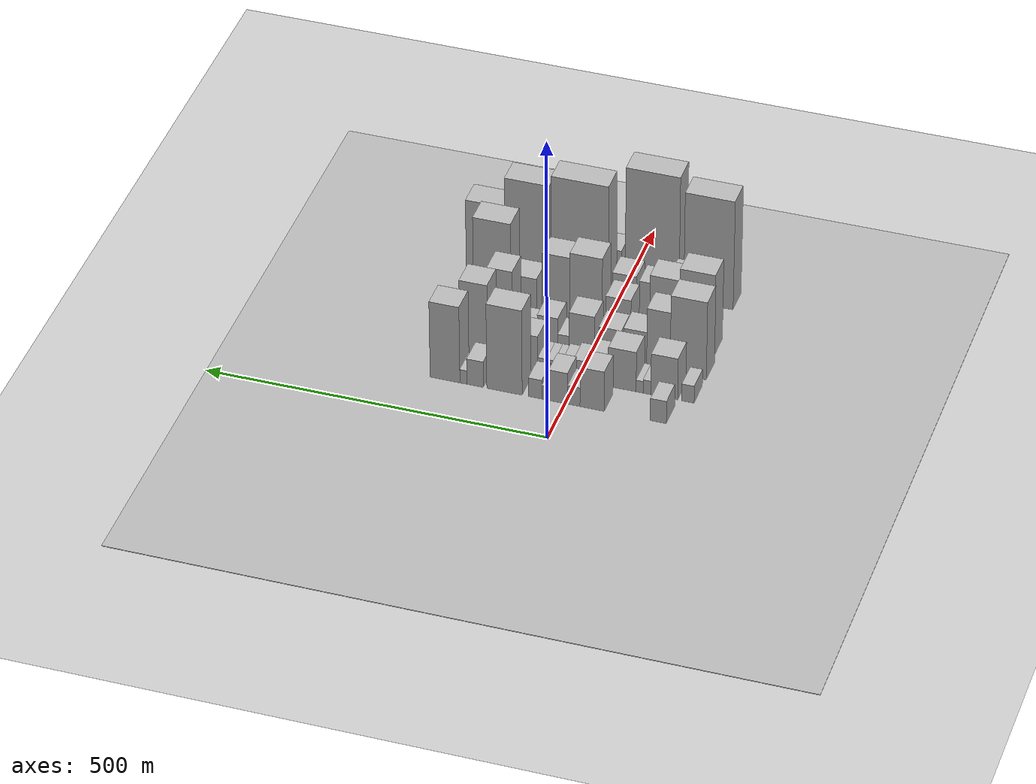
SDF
<sdf version="1.6">
 <world name="default">
  <include><name>ground_plane_1</name><uri>model://HANNAS_ground_plane</uri></include>
  <include>
   <name>ground_plane_2</name>
   <uri>model://HANNAS_ground_plane</uri>
   <pose>100 0 0  0 0 0</pose>
  </include>
  <model name="building_23">
   <static>1</static>
   <pose>100.0000 -133.8058 0 0.000000 0.000000 0.000000</pose>
   <link name="link">
    <pose>0 0 19.50 0 0 0</pose>
    <collision name="collision"><geometry><box><size>40.0000 22.9913 39.0000</size></box></geometry></collision>
    <visual name="visual">
     <cast_shadows>0</cast_shadows>
     <geometry><box><size>40.0000 22.9913 39.0000</size></box></geometry>
     <material>
      <script>
       <uri>model://HANNAS_wall/materials/scripts</uri>
       <uri>model://HANNAS_wall/materials/textures</uri>
       <name>vrc/HANNAS_wall</name>
      </script>
     </material>
    </visual>
   </link>
  </model>
  <model name="building_24">
   <static>1</static>
   <pose>100.0000 -38.3105 0 0.000000 0.000000 0.000000</pose>
   <link name="link">
    <pose>0 0 34.50 0 0 0</pose>
    <collision name="collision"><geometry><box><size>40.0000 35.3331 69.0000</size></box></geometry></collision>
    <visual name="visual">
     <cast_shadows>0</cast_shadows>
     <geometry><box><size>40.0000 35.3331 69.0000</size></box></geometry>
     <material>
      <script>
       <uri>model://HANNAS_wall/materials/scripts</uri>
       <uri>model://HANNAS_wall/materials/textures</uri>
       <name>vrc/HANNAS_wall</name>
      </script>
     </material>
    </visual>
   </link>
  </model>
  <model name="building_25">
   <static>1</static>
   <pose>100.0000 -11.7626 0 0.000000 0.000000 0.000000</pose>
   <link name="link">
    <pose>0 0 16.50 0 0 0</pose>
    <collision name="collision"><geometry><box><size>40.0000 17.7626 33.0000</size></box></geometry></collision>
    <visual name="visual">
     <cast_shadows>0</cast_shadows>
     <geometry><box><size>40.0000 17.7626 33.0000</size></box></geometry>
     <material>
      <script>
       <uri>model://HANNAS_wall/materials/scripts</uri>
       <uri>model://HANNAS_wall/materials/textures</uri>
       <name>vrc/HANNAS_wall</name>
      </script>
     </material>
    </visual>
   </link>
  </model>
  <model name="building_26">
   <static>1</static>
   <pose>100.0000 10.8010 0 0.000000 0.000000 0.000000</pose>
   <link name="link">
    <pose>0 0 27.00 0 0 0</pose>
    <collision name="collision"><geometry><box><size>40.0000 27.3646 54.0000</size></box></geometry></collision>
    <visual name="visual">
     <cast_shadows>0</cast_shadows>
     <geometry><box><size>40.0000 27.3646 54.0000</size></box></geometry>
     <material>
      <script>
       <uri>model://HANNAS_wall/materials/scripts</uri>
       <uri>model://HANNAS_wall/materials/textures</uri>
       <name>vrc/HANNAS_wall</name>
      </script>
     </material>
    </visual>
   </link>
  </model>
  <model name="building_27">
   <static>1</static>
   <pose>100.0000 29.5351 0 0.000000 0.000000 0.000000</pose>
   <link name="link">
    <pose>0 0 12.00 0 0 0</pose>
    <collision name="collision"><geometry><box><size>40.0000 10.1037 24.0000</size></box></geometry></collision>
    <visual name="visual">
     <cast_shadows>0</cast_shadows>
     <geometry><box><size>40.0000 10.1037 24.0000</size></box></geometry>
     <material>
      <script>
       <uri>model://HANNAS_wall/materials/scripts</uri>
       <uri>model://HANNAS_wall/materials/textures</uri>
       <name>vrc/HANNAS_wall</name>
      </script>
     </material>
    </visual>
   </link>
  </model>
  <model name="building_28">
   <static>1</static>
   <pose>100.0000 44.4117 0 0.000000 0.000000 0.000000</pose>
   <link name="link">
    <pose>0 0 16.50 0 0 0</pose>
    <collision name="collision"><geometry><box><size>40.0000 19.6494 33.0000</size></box></geometry></collision>
    <visual name="visual">
     <cast_shadows>0</cast_shadows>
     <geometry><box><size>40.0000 19.6494 33.0000</size></box></geometry>
     <material>
      <script>
       <uri>model://HANNAS_wall/materials/scripts</uri>
       <uri>model://HANNAS_wall/materials/textures</uri>
       <name>vrc/HANNAS_wall</name>
      </script>
     </material>
    </visual>
   </link>
  </model>
  <model name="building_29">
   <static>1</static>
   <pose>100.0000 89.0298 0 0.000000 0.000000 0.000000</pose>
   <link name="link">
    <pose>0 0 73.50 0 0 0</pose>
    <collision name="collision"><geometry><box><size>40.0000 51.5868 147.0000</size></box></geometry></collision>
    <visual name="visual">
     <cast_shadows>0</cast_shadows>
     <geometry><box><size>40.0000 51.5868 147.0000</size></box></geometry>
     <material>
      <script>
       <uri>model://HANNAS_wall/materials/scripts</uri>
       <uri>model://HANNAS_wall/materials/textures</uri>
       <name>vrc/HANNAS_wall</name>
      </script>
     </material>
    </visual>
   </link>
  </model>
  <model name="building_30">
   <static>1</static>
   <pose>100.0000 131.9228 0 0.000000 0.000000 0.000000</pose>
   <link name="link">
    <pose>0 0 22.50 0 0 0</pose>
    <collision name="collision"><geometry><box><size>40.0000 24.1992 45.0000</size></box></geometry></collision>
    <visual name="visual">
     <cast_shadows>0</cast_shadows>
     <geometry><box><size>40.0000 24.1992 45.0000</size></box></geometry>
     <material>
      <script>
       <uri>model://HANNAS_wall/materials/scripts</uri>
       <uri>model://HANNAS_wall/materials/textures</uri>
       <name>vrc/HANNAS_wall</name>
      </script>
     </material>
    </visual>
   </link>
  </model>
  <model name="building_31">
   <static>1</static>
   <pose>100.0000 149.0816 0 0.000000 0.000000 0.000000</pose>
   <link name="link">
    <pose>0 0 12.00 0 0 0</pose>
    <collision name="collision"><geometry><box><size>40.0000 10.1185 24.0000</size></box></geometry></collision>
    <visual name="visual">
     <cast_shadows>0</cast_shadows>
     <geometry><box><size>40.0000 10.1185 24.0000</size></box></geometry>
     <material>
      <script>
       <uri>model://HANNAS_wall/materials/scripts</uri>
       <uri>model://HANNAS_wall/materials/textures</uri>
       <name>vrc/HANNAS_wall</name>
      </script>
     </material>
    </visual>
   </link>
  </model>
  <model name="building_32">
   <static>1</static>
   <pose>100.0000 175.8906 0 0.000000 0.000000 0.000000</pose>
   <link name="link">
    <pose>0 0 66.00 0 0 0</pose>
    <collision name="collision"><geometry><box><size>40.0000 43.4994 132.0000</size></box></geometry></collision>
    <visual name="visual">
     <cast_shadows>0</cast_shadows>
     <geometry><box><size>40.0000 43.4994 132.0000</size></box></geometry>
     <material>
      <script>
       <uri>model://HANNAS_wall/materials/scripts</uri>
       <uri>model://HANNAS_wall/materials/textures</uri>
       <name>vrc/HANNAS_wall</name>
      </script>
     </material>
    </visual>
   </link>
  </model>
  <model name="building_73">
   <static>1</static>
   <pose>155.0000 -159.9413 0 0.000000 0.000000 0.000000</pose>
   <link name="link">
    <pose>0 0 15.00 0 0 0</pose>
    <collision name="collision"><geometry><box><size>40.0000 17.6762 30.0000</size></box></geometry></collision>
    <visual name="visual">
     <cast_shadows>0</cast_shadows>
     <geometry><box><size>40.0000 17.6762 30.0000</size></box></geometry>
     <material>
      <script>
       <uri>model://HANNAS_wall/materials/scripts</uri>
       <uri>model://HANNAS_wall/materials/textures</uri>
       <name>vrc/HANNAS_wall</name>
      </script>
     </material>
    </visual>
   </link>
  </model>
  <model name="building_74">
   <static>1</static>
   <pose>155.0000 -125.7221 0 0.000000 0.000000 0.000000</pose>
   <link name="link">
    <pose>0 0 36.00 0 0 0</pose>
    <collision name="collision"><geometry><box><size>40.0000 38.7620 72.0000</size></box></geometry></collision>
    <visual name="visual">
     <cast_shadows>0</cast_shadows>
     <geometry><box><size>40.0000 38.7620 72.0000</size></box></geometry>
     <material>
      <script>
       <uri>model://HANNAS_wall/materials/scripts</uri>
       <uri>model://HANNAS_wall/materials/textures</uri>
       <name>vrc/HANNAS_wall</name>
      </script>
     </material>
    </visual>
   </link>
  </model>
  <model name="building_75">
   <static>1</static>
   <pose>155.0000 -100.6961 0 0.000000 0.000000 0.000000</pose>
   <link name="link">
    <pose>0 0 12.00 0 0 0</pose>
    <collision name="collision"><geometry><box><size>40.0000 11.2900 24.0000</size></box></geometry></collision>
    <visual name="visual">
     <cast_shadows>0</cast_shadows>
     <geometry><box><size>40.0000 11.2900 24.0000</size></box></geometry>
     <material>
      <script>
       <uri>model://HANNAS_wall/materials/scripts</uri>
       <uri>model://HANNAS_wall/materials/textures</uri>
       <name>vrc/HANNAS_wall</name>
      </script>
     </material>
    </visual>
   </link>
  </model>
  <model name="building_76">
   <static>1</static>
   <pose>155.0000 -89.9721 0 0.000000 0.000000 0.000000</pose>
   <link name="link">
    <pose>0 0 10.50 0 0 0</pose>
    <collision name="collision"><geometry><box><size>40.0000 10.1580 21.0000</size></box></geometry></collision>
    <visual name="visual">
     <cast_shadows>0</cast_shadows>
     <geometry><box><size>40.0000 10.1580 21.0000</size></box></geometry>
     <material>
      <script>
       <uri>model://HANNAS_wall/materials/scripts</uri>
       <uri>model://HANNAS_wall/materials/textures</uri>
       <name>vrc/HANNAS_wall</name>
      </script>
     </material>
    </visual>
   </link>
  </model>
  <model name="building_77">
   <static>1</static>
   <pose>155.0000 -64.7002 0 0.000000 0.000000 0.000000</pose>
   <link name="link">
    <pose>0 0 34.50 0 0 0</pose>
    <collision name="collision"><geometry><box><size>40.0000 40.3858 69.0000</size></box></geometry></collision>
    <visual name="visual">
     <cast_shadows>0</cast_shadows>
     <geometry><box><size>40.0000 40.3858 69.0000</size></box></geometry>
     <material>
      <script>
       <uri>model://HANNAS_wall/materials/scripts</uri>
       <uri>model://HANNAS_wall/materials/textures</uri>
       <name>vrc/HANNAS_wall</name>
      </script>
     </material>
    </visual>
   </link>
  </model>
  <model name="building_78">
   <static>1</static>
   <pose>155.0000 -31.3387 0 0.000000 0.000000 0.000000</pose>
   <link name="link">
    <pose>0 0 24.00 0 0 0</pose>
    <collision name="collision"><geometry><box><size>40.0000 26.3372 48.0000</size></box></geometry></collision>
    <visual name="visual">
     <cast_shadows>0</cast_shadows>
     <geometry><box><size>40.0000 26.3372 48.0000</size></box></geometry>
     <material>
      <script>
       <uri>model://HANNAS_wall/materials/scripts</uri>
       <uri>model://HANNAS_wall/materials/textures</uri>
       <name>vrc/HANNAS_wall</name>
      </script>
     </material>
    </visual>
   </link>
  </model>
  <model name="building_79">
   <static>1</static>
   <pose>155.0000 -4.5127 0 0.000000 0.000000 0.000000</pose>
   <link name="link">
    <pose>0 0 18.00 0 0 0</pose>
    <collision name="collision"><geometry><box><size>40.0000 21.3148 36.0000</size></box></geometry></collision>
    <visual name="visual">
     <cast_shadows>0</cast_shadows>
     <geometry><box><size>40.0000 21.3148 36.0000</size></box></geometry>
     <material>
      <script>
       <uri>model://HANNAS_wall/materials/scripts</uri>
       <uri>model://HANNAS_wall/materials/textures</uri>
       <name>vrc/HANNAS_wall</name>
      </script>
     </material>
    </visual>
   </link>
  </model>
  <model name="building_80">
   <static>1</static>
   <pose>155.0000 14.5444 0 0.000000 0.000000 0.000000</pose>
   <link name="link">
    <pose>0 0 15.00 0 0 0</pose>
    <collision name="collision"><geometry><box><size>40.0000 16.7994 30.0000</size></box></geometry></collision>
    <visual name="visual">
     <cast_shadows>0</cast_shadows>
     <geometry><box><size>40.0000 16.7994 30.0000</size></box></geometry>
     <material>
      <script>
       <uri>model://HANNAS_wall/materials/scripts</uri>
       <uri>model://HANNAS_wall/materials/textures</uri>
       <name>vrc/HANNAS_wall</name>
      </script>
     </material>
    </visual>
   </link>
  </model>
  <model name="building_81">
   <static>1</static>
   <pose>155.0000 28.5646 0 0.000000 0.000000 0.000000</pose>
   <link name="link">
    <pose>0 0 13.50 0 0 0</pose>
    <collision name="collision"><geometry><box><size>40.0000 11.2410 27.0000</size></box></geometry></collision>
    <visual name="visual">
     <cast_shadows>0</cast_shadows>
     <geometry><box><size>40.0000 11.2410 27.0000</size></box></geometry>
     <material>
      <script>
       <uri>model://HANNAS_wall/materials/scripts</uri>
       <uri>model://HANNAS_wall/materials/textures</uri>
       <name>vrc/HANNAS_wall</name>
      </script>
     </material>
    </visual>
   </link>
  </model>
  <model name="building_82">
   <static>1</static>
   <pose>155.0000 39.7942 0 0.000000 0.000000 0.000000</pose>
   <link name="link">
    <pose>0 0 13.50 0 0 0</pose>
    <collision name="collision"><geometry><box><size>40.0000 11.2180 27.0000</size></box></geometry></collision>
    <visual name="visual">
     <cast_shadows>0</cast_shadows>
     <geometry><box><size>40.0000 11.2180 27.0000</size></box></geometry>
     <material>
      <script>
       <uri>model://HANNAS_wall/materials/scripts</uri>
       <uri>model://HANNAS_wall/materials/textures</uri>
       <name>vrc/HANNAS_wall</name>
      </script>
     </material>
    </visual>
   </link>
  </model>
  <model name="building_83">
   <static>1</static>
   <pose>155.0000 51.8045 0 0.000000 0.000000 0.000000</pose>
   <link name="link">
    <pose>0 0 13.50 0 0 0</pose>
    <collision name="collision"><geometry><box><size>40.0000 12.8027 27.0000</size></box></geometry></collision>
    <visual name="visual">
     <cast_shadows>0</cast_shadows>
     <geometry><box><size>40.0000 12.8027 27.0000</size></box></geometry>
     <material>
      <script>
       <uri>model://HANNAS_wall/materials/scripts</uri>
       <uri>model://HANNAS_wall/materials/textures</uri>
       <name>vrc/HANNAS_wall</name>
      </script>
     </material>
    </visual>
   </link>
  </model>
  <model name="building_84">
   <static>1</static>
   <pose>155.0000 75.0886 0 0.000000 0.000000 0.000000</pose>
   <link name="link">
    <pose>0 0 31.50 0 0 0</pose>
    <collision name="collision"><geometry><box><size>40.0000 33.7656 63.0000</size></box></geometry></collision>
    <visual name="visual">
     <cast_shadows>0</cast_shadows>
     <geometry><box><size>40.0000 33.7656 63.0000</size></box></geometry>
     <material>
      <script>
       <uri>model://HANNAS_wall/materials/scripts</uri>
       <uri>model://HANNAS_wall/materials/textures</uri>
       <name>vrc/HANNAS_wall</name>
      </script>
     </material>
    </visual>
   </link>
  </model>
  <model name="building_85">
   <static>1</static>
   <pose>155.0000 98.3248 0 0.000000 0.000000 0.000000</pose>
   <link name="link">
    <pose>0 0 13.50 0 0 0</pose>
    <collision name="collision"><geometry><box><size>40.0000 12.7068 27.0000</size></box></geometry></collision>
    <visual name="visual">
     <cast_shadows>0</cast_shadows>
     <geometry><box><size>40.0000 12.7068 27.0000</size></box></geometry>
     <material>
      <script>
       <uri>model://HANNAS_wall/materials/scripts</uri>
       <uri>model://HANNAS_wall/materials/textures</uri>
       <name>vrc/HANNAS_wall</name>
      </script>
     </material>
    </visual>
   </link>
  </model>
  <model name="building_86">
   <static>1</static>
   <pose>155.0000 122.1822 0 0.000000 0.000000 0.000000</pose>
   <link name="link">
    <pose>0 0 18.00 0 0 0</pose>
    <collision name="collision"><geometry><box><size>40.0000 19.0079 36.0000</size></box></geometry></collision>
    <visual name="visual">
     <cast_shadows>0</cast_shadows>
     <geometry><box><size>40.0000 19.0079 36.0000</size></box></geometry>
     <material>
      <script>
       <uri>model://HANNAS_wall/materials/scripts</uri>
       <uri>model://HANNAS_wall/materials/textures</uri>
       <name>vrc/HANNAS_wall</name>
      </script>
     </material>
    </visual>
   </link>
  </model>
  <model name="building_87">
   <static>1</static>
   <pose>155.0000 152.0349 0 0.000000 0.000000 0.000000</pose>
   <link name="link">
    <pose>0 0 67.50 0 0 0</pose>
    <collision name="collision"><geometry><box><size>40.0000 40.6977 135.0000</size></box></geometry></collision>
    <visual name="visual">
     <cast_shadows>0</cast_shadows>
     <geometry><box><size>40.0000 40.6977 135.0000</size></box></geometry>
     <material>
      <script>
       <uri>model://HANNAS_wall/materials/scripts</uri>
       <uri>model://HANNAS_wall/materials/textures</uri>
       <name>vrc/HANNAS_wall</name>
      </script>
     </material>
    </visual>
   </link>
  </model>
  <model name="building_124">
   <static>1</static>
   <pose>210.0000 -143.7323 0 0.000000 0.000000 0.000000</pose>
   <link name="link">
    <pose>0 0 67.50 0 0 0</pose>
    <collision name="collision"><geometry><box><size>40.0000 52.4762 135.0000</size></box></geometry></collision>
    <visual name="visual">
     <cast_shadows>0</cast_shadows>
     <geometry><box><size>40.0000 52.4762 135.0000</size></box></geometry>
     <material>
      <script>
       <uri>model://HANNAS_wall/materials/scripts</uri>
       <uri>model://HANNAS_wall/materials/textures</uri>
       <name>vrc/HANNAS_wall</name>
      </script>
     </material>
    </visual>
   </link>
  </model>
  <model name="building_125">
   <static>1</static>
   <pose>210.0000 -100.3800 0 0.000000 0.000000 0.000000</pose>
   <link name="link">
    <pose>0 0 52.50 0 0 0</pose>
    <collision name="collision"><geometry><box><size>40.0000 34.2284 105.0000</size></box></geometry></collision>
    <visual name="visual">
     <cast_shadows>0</cast_shadows>
     <geometry><box><size>40.0000 34.2284 105.0000</size></box></geometry>
     <material>
      <script>
       <uri>model://HANNAS_wall/materials/scripts</uri>
       <uri>model://HANNAS_wall/materials/textures</uri>
       <name>vrc/HANNAS_wall</name>
      </script>
     </material>
    </visual>
   </link>
  </model>
  <model name="building_126">
   <static>1</static>
   <pose>210.0000 -66.3722 0 0.000000 0.000000 0.000000</pose>
   <link name="link">
    <pose>0 0 31.50 0 0 0</pose>
    <collision name="collision"><geometry><box><size>40.0000 33.7871 63.0000</size></box></geometry></collision>
    <visual name="visual">
     <cast_shadows>0</cast_shadows>
     <geometry><box><size>40.0000 33.7871 63.0000</size></box></geometry>
     <material>
      <script>
       <uri>model://HANNAS_wall/materials/scripts</uri>
       <uri>model://HANNAS_wall/materials/textures</uri>
       <name>vrc/HANNAS_wall</name>
      </script>
     </material>
    </visual>
   </link>
  </model>
  <model name="building_127">
   <static>1</static>
   <pose>210.0000 -29.9133 0 0.000000 0.000000 0.000000</pose>
   <link name="link">
    <pose>0 0 28.50 0 0 0</pose>
    <collision name="collision"><geometry><box><size>40.0000 33.1308 57.0000</size></box></geometry></collision>
    <visual name="visual">
     <cast_shadows>0</cast_shadows>
     <geometry><box><size>40.0000 33.1308 57.0000</size></box></geometry>
     <material>
      <script>
       <uri>model://HANNAS_wall/materials/scripts</uri>
       <uri>model://HANNAS_wall/materials/textures</uri>
       <name>vrc/HANNAS_wall</name>
      </script>
     </material>
    </visual>
   </link>
  </model>
  <model name="building_128">
   <static>1</static>
   <pose>210.0000 11.3127 0 0.000000 0.000000 0.000000</pose>
   <link name="link">
    <pose>0 0 36.00 0 0 0</pose>
    <collision name="collision"><geometry><box><size>40.0000 37.3212 72.0000</size></box></geometry></collision>
    <visual name="visual">
     <cast_shadows>0</cast_shadows>
     <geometry><box><size>40.0000 37.3212 72.0000</size></box></geometry>
     <material>
      <script>
       <uri>model://HANNAS_wall/materials/scripts</uri>
       <uri>model://HANNAS_wall/materials/textures</uri>
       <name>vrc/HANNAS_wall</name>
      </script>
     </material>
    </visual>
   </link>
  </model>
  <model name="building_129">
   <static>1</static>
   <pose>210.0000 38.2741 0 0.000000 0.000000 0.000000</pose>
   <link name="link">
    <pose>0 0 15.00 0 0 0</pose>
    <collision name="collision"><geometry><box><size>40.0000 16.6015 30.0000</size></box></geometry></collision>
    <visual name="visual">
     <cast_shadows>0</cast_shadows>
     <geometry><box><size>40.0000 16.6015 30.0000</size></box></geometry>
     <material>
      <script>
       <uri>model://HANNAS_wall/materials/scripts</uri>
       <uri>model://HANNAS_wall/materials/textures</uri>
       <name>vrc/HANNAS_wall</name>
      </script>
     </material>
    </visual>
   </link>
  </model>
  <model name="building_130">
   <static>1</static>
   <pose>210.0000 61.6853 0 0.000000 0.000000 0.000000</pose>
   <link name="link">
    <pose>0 0 28.50 0 0 0</pose>
    <collision name="collision"><geometry><box><size>40.0000 30.2209 57.0000</size></box></geometry></collision>
    <visual name="visual">
     <cast_shadows>0</cast_shadows>
     <geometry><box><size>40.0000 30.2209 57.0000</size></box></geometry>
     <material>
      <script>
       <uri>model://HANNAS_wall/materials/scripts</uri>
       <uri>model://HANNAS_wall/materials/textures</uri>
       <name>vrc/HANNAS_wall</name>
      </script>
     </material>
    </visual>
   </link>
  </model>
  <model name="building_131">
   <static>1</static>
   <pose>210.0000 90.9158 0 0.000000 0.000000 0.000000</pose>
   <link name="link">
    <pose>0 0 18.00 0 0 0</pose>
    <collision name="collision"><geometry><box><size>40.0000 18.2402 36.0000</size></box></geometry></collision>
    <visual name="visual">
     <cast_shadows>0</cast_shadows>
     <geometry><box><size>40.0000 18.2402 36.0000</size></box></geometry>
     <material>
      <script>
       <uri>model://HANNAS_wall/materials/scripts</uri>
       <uri>model://HANNAS_wall/materials/textures</uri>
       <name>vrc/HANNAS_wall</name>
      </script>
     </material>
    </visual>
   </link>
  </model>
  <model name="building_132">
   <static>1</static>
   <pose>210.0000 106.5720 0 0.000000 0.000000 0.000000</pose>
   <link name="link">
    <pose>0 0 13.50 0 0 0</pose>
    <collision name="collision"><geometry><box><size>40.0000 13.0722 27.0000</size></box></geometry></collision>
    <visual name="visual">
     <cast_shadows>0</cast_shadows>
     <geometry><box><size>40.0000 13.0722 27.0000</size></box></geometry>
     <material>
      <script>
       <uri>model://HANNAS_wall/materials/scripts</uri>
       <uri>model://HANNAS_wall/materials/textures</uri>
       <name>vrc/HANNAS_wall</name>
      </script>
     </material>
    </visual>
   </link>
  </model>
  <model name="building_133">
   <static>1</static>
   <pose>210.0000 131.6312 0 0.000000 0.000000 0.000000</pose>
   <link name="link">
    <pose>0 0 61.50 0 0 0</pose>
    <collision name="collision"><geometry><box><size>40.0000 37.0461 123.0000</size></box></geometry></collision>
    <visual name="visual">
     <cast_shadows>0</cast_shadows>
     <geometry><box><size>40.0000 37.0461 123.0000</size></box></geometry>
     <material>
      <script>
       <uri>model://HANNAS_wall/materials/scripts</uri>
       <uri>model://HANNAS_wall/materials/textures</uri>
       <name>vrc/HANNAS_wall</name>
      </script>
     </material>
    </visual>
   </link>
  </model>
  <model name="building_134">
   <static>1</static>
   <pose>210.0000 165.3516 0 0.000000 0.000000 0.000000</pose>
   <link name="link">
    <pose>0 0 30.00 0 0 0</pose>
    <collision name="collision"><geometry><box><size>40.0000 30.3948 60.0000</size></box></geometry></collision>
    <visual name="visual">
     <cast_shadows>0</cast_shadows>
     <geometry><box><size>40.0000 30.3948 60.0000</size></box></geometry>
     <material>
      <script>
       <uri>model://HANNAS_wall/materials/scripts</uri>
       <uri>model://HANNAS_wall/materials/textures</uri>
       <name>vrc/HANNAS_wall</name>
      </script>
     </material>
    </visual>
   </link>
  </model>
  <model name="building_177">
   <static>1</static>
   <pose>265.0000 -139.5790 0 0.000000 0.000000 0.000000</pose>
   <link name="link">
    <pose>0 0 70.50 0 0 0</pose>
    <collision name="collision"><geometry><box><size>40.0000 51.1971 141.0000</size></box></geometry></collision>
    <visual name="visual">
     <cast_shadows>0</cast_shadows>
     <geometry><box><size>40.0000 51.1971 141.0000</size></box></geometry>
     <material>
      <script>
       <uri>model://HANNAS_wall/materials/scripts</uri>
       <uri>model://HANNAS_wall/materials/textures</uri>
       <name>vrc/HANNAS_wall</name>
      </script>
     </material>
    </visual>
   </link>
  </model>
  <model name="building_178">
   <static>1</static>
   <pose>265.0000 -92.2448 0 0.000000 0.000000 0.000000</pose>
   <link name="link">
    <pose>0 0 60.00 0 0 0</pose>
    <collision name="collision"><geometry><box><size>40.0000 43.4713 120.0000</size></box></geometry></collision>
    <visual name="visual">
     <cast_shadows>0</cast_shadows>
     <geometry><box><size>40.0000 43.4713 120.0000</size></box></geometry>
     <material>
      <script>
       <uri>model://HANNAS_wall/materials/scripts</uri>
       <uri>model://HANNAS_wall/materials/textures</uri>
       <name>vrc/HANNAS_wall</name>
      </script>
     </material>
    </visual>
   </link>
  </model>
  <model name="building_179">
   <static>1</static>
   <pose>265.0000 -64.8264 0 0.000000 0.000000 0.000000</pose>
   <link name="link">
    <pose>0 0 13.50 0 0 0</pose>
    <collision name="collision"><geometry><box><size>40.0000 11.3654 27.0000</size></box></geometry></collision>
    <visual name="visual">
     <cast_shadows>0</cast_shadows>
     <geometry><box><size>40.0000 11.3654 27.0000</size></box></geometry>
     <material>
      <script>
       <uri>model://HANNAS_wall/materials/scripts</uri>
       <uri>model://HANNAS_wall/materials/textures</uri>
       <name>vrc/HANNAS_wall</name>
      </script>
     </material>
    </visual>
   </link>
  </model>
  <model name="building_180">
   <static>1</static>
   <pose>265.0000 -55.6859 0 0.000000 0.000000 0.000000</pose>
   <link name="link">
    <pose>0 0 7.50 0 0 0</pose>
    <collision name="collision"><geometry><box><size>40.0000 6.9157 15.0000</size></box></geometry></collision>
    <visual name="visual">
     <cast_shadows>0</cast_shadows>
     <geometry><box><size>40.0000 6.9157 15.0000</size></box></geometry>
     <material>
      <script>
       <uri>model://HANNAS_wall/materials/scripts</uri>
       <uri>model://HANNAS_wall/materials/textures</uri>
       <name>vrc/HANNAS_wall</name>
      </script>
     </material>
    </visual>
   </link>
  </model>
  <model name="building_181">
   <static>1</static>
   <pose>265.0000 -24.7318 0 0.000000 0.000000 0.000000</pose>
   <link name="link">
    <pose>0 0 34.50 0 0 0</pose>
    <collision name="collision"><geometry><box><size>40.0000 36.9926 69.0000</size></box></geometry></collision>
    <visual name="visual">
     <cast_shadows>0</cast_shadows>
     <geometry><box><size>40.0000 36.9926 69.0000</size></box></geometry>
     <material>
      <script>
       <uri>model://HANNAS_wall/materials/scripts</uri>
       <uri>model://HANNAS_wall/materials/textures</uri>
       <name>vrc/HANNAS_wall</name>
      </script>
     </material>
    </visual>
   </link>
  </model>
  <model name="building_182">
   <static>1</static>
   <pose>265.0000 22.4403 0 0.000000 0.000000 0.000000</pose>
   <link name="link">
    <pose>0 0 66.00 0 0 0</pose>
    <collision name="collision"><geometry><box><size>40.0000 47.3516 132.0000</size></box></geometry></collision>
    <visual name="visual">
     <cast_shadows>0</cast_shadows>
     <geometry><box><size>40.0000 47.3516 132.0000</size></box></geometry>
     <material>
      <script>
       <uri>model://HANNAS_wall/materials/scripts</uri>
       <uri>model://HANNAS_wall/materials/textures</uri>
       <name>vrc/HANNAS_wall</name>
      </script>
     </material>
    </visual>
   </link>
  </model>
  <model name="building_183">
   <static>1</static>
   <pose>265.0000 66.6333 0 0.000000 0.000000 0.000000</pose>
   <link name="link">
    <pose>0 0 61.50 0 0 0</pose>
    <collision name="collision"><geometry><box><size>40.0000 41.0344 123.0000</size></box></geometry></collision>
    <visual name="visual">
     <cast_shadows>0</cast_shadows>
     <geometry><box><size>40.0000 41.0344 123.0000</size></box></geometry>
     <material>
      <script>
       <uri>model://HANNAS_wall/materials/scripts</uri>
       <uri>model://HANNAS_wall/materials/textures</uri>
       <name>vrc/HANNAS_wall</name>
      </script>
     </material>
    </visual>
   </link>
  </model>
  <model name="building_184">
   <static>1</static>
   <pose>265.0000 114.1565 0 0.000000 0.000000 0.000000</pose>
   <link name="link">
    <pose>0 0 37.50 0 0 0</pose>
    <collision name="collision"><geometry><box><size>40.0000 38.0119 75.0000</size></box></geometry></collision>
    <visual name="visual">
     <cast_shadows>0</cast_shadows>
     <geometry><box><size>40.0000 38.0119 75.0000</size></box></geometry>
     <material>
      <script>
       <uri>model://HANNAS_wall/materials/scripts</uri>
       <uri>model://HANNAS_wall/materials/textures</uri>
       <name>vrc/HANNAS_wall</name>
      </script>
     </material>
    </visual>
   </link>
  </model>
  <model name="building_185">
   <static>1</static>
   <pose>265.0000 161.0077 0 0.000000 0.000000 0.000000</pose>
   <link name="link">
    <pose>0 0 81.00 0 0 0</pose>
    <collision name="collision"><geometry><box><size>40.0000 55.6905 162.0000</size></box></geometry></collision>
    <visual name="visual">
     <cast_shadows>0</cast_shadows>
     <geometry><box><size>40.0000 55.6905 162.0000</size></box></geometry>
     <material>
      <script>
       <uri>model://HANNAS_wall/materials/scripts</uri>
       <uri>model://HANNAS_wall/materials/textures</uri>
       <name>vrc/HANNAS_wall</name>
      </script>
     </material>
    </visual>
   </link>
  </model>
  <model name="building_227">
   <static>1</static>
   <pose>320.0000 -135.0049 0 0.000000 0.000000 0.000000</pose>
   <link name="link">
    <pose>0 0 16.50 0 0 0</pose>
    <collision name="collision"><geometry><box><size>40.0000 18.7515 33.0000</size></box></geometry></collision>
    <visual name="visual">
     <cast_shadows>0</cast_shadows>
     <geometry><box><size>40.0000 18.7515 33.0000</size></box></geometry>
     <material>
      <script>
       <uri>model://HANNAS_wall/materials/scripts</uri>
       <uri>model://HANNAS_wall/materials/textures</uri>
       <name>vrc/HANNAS_wall</name>
      </script>
     </material>
    </visual>
   </link>
  </model>
  <model name="building_228">
   <static>1</static>
   <pose>320.0000 -104.3248 0 0.000000 0.000000 0.000000</pose>
   <link name="link">
    <pose>0 0 42.00 0 0 0</pose>
    <collision name="collision"><geometry><box><size>40.0000 42.6087 84.0000</size></box></geometry></collision>
    <visual name="visual">
     <cast_shadows>0</cast_shadows>
     <geometry><box><size>40.0000 42.6087 84.0000</size></box></geometry>
     <material>
      <script>
       <uri>model://HANNAS_wall/materials/scripts</uri>
       <uri>model://HANNAS_wall/materials/textures</uri>
       <name>vrc/HANNAS_wall</name>
      </script>
     </material>
    </visual>
   </link>
  </model>
  <model name="building_229">
   <static>1</static>
   <pose>320.0000 -56.2215 0 0.000000 0.000000 0.000000</pose>
   <link name="link">
    <pose>0 0 31.50 0 0 0</pose>
    <collision name="collision"><geometry><box><size>40.0000 35.5978 63.0000</size></box></geometry></collision>
    <visual name="visual">
     <cast_shadows>0</cast_shadows>
     <geometry><box><size>40.0000 35.5978 63.0000</size></box></geometry>
     <material>
      <script>
       <uri>model://HANNAS_wall/materials/scripts</uri>
       <uri>model://HANNAS_wall/materials/textures</uri>
       <name>vrc/HANNAS_wall</name>
      </script>
     </material>
    </visual>
   </link>
  </model>
  <model name="building_230">
   <static>1</static>
   <pose>320.0000 -16.6225 0 0.000000 0.000000 0.000000</pose>
   <link name="link">
    <pose>0 0 34.50 0 0 0</pose>
    <collision name="collision"><geometry><box><size>40.0000 35.6003 69.0000</size></box></geometry></collision>
    <visual name="visual">
     <cast_shadows>0</cast_shadows>
     <geometry><box><size>40.0000 35.6003 69.0000</size></box></geometry>
     <material>
      <script>
       <uri>model://HANNAS_wall/materials/scripts</uri>
       <uri>model://HANNAS_wall/materials/textures</uri>
       <name>vrc/HANNAS_wall</name>
      </script>
     </material>
    </visual>
   </link>
  </model>
  <model name="building_231">
   <static>1</static>
   <pose>320.0000 49.1157 0 0.000000 0.000000 0.000000</pose>
   <link name="link">
    <pose>0 0 108.00 0 0 0</pose>
    <collision name="collision"><geometry><box><size>40.0000 83.8762 216.0000</size></box></geometry></collision>
    <visual name="visual">
     <cast_shadows>0</cast_shadows>
     <geometry><box><size>40.0000 83.8762 216.0000</size></box></geometry>
     <material>
      <script>
       <uri>model://HANNAS_wall/materials/scripts</uri>
       <uri>model://HANNAS_wall/materials/textures</uri>
       <name>vrc/HANNAS_wall</name>
      </script>
     </material>
    </visual>
   </link>
  </model>
  <model name="building_232">
   <static>1</static>
   <pose>320.0000 126.9676 0 0.000000 0.000000 0.000000</pose>
   <link name="link">
    <pose>0 0 99.00 0 0 0</pose>
    <collision name="collision"><geometry><box><size>40.0000 65.8274 198.0000</size></box></geometry></collision>
    <visual name="visual">
     <cast_shadows>0</cast_shadows>
     <geometry><box><size>40.0000 65.8274 198.0000</size></box></geometry>
     <material>
      <script>
       <uri>model://HANNAS_wall/materials/scripts</uri>
       <uri>model://HANNAS_wall/materials/textures</uri>
       <name>vrc/HANNAS_wall</name>
      </script>
     </material>
    </visual>
   </link>
  </model>
  <model name="building_233">
   <static>1</static>
   <pose>320.0000 188.8703 0 0.000000 0.000000 0.000000</pose>
   <link name="link">
    <pose>0 0 73.50 0 0 0</pose>
    <collision name="collision"><geometry><box><size>40.0000 57.9780 147.0000</size></box></geometry></collision>
    <visual name="visual">
     <cast_shadows>0</cast_shadows>
     <geometry><box><size>40.0000 57.9780 147.0000</size></box></geometry>
     <material>
      <script>
       <uri>model://HANNAS_wall/materials/scripts</uri>
       <uri>model://HANNAS_wall/materials/textures</uri>
       <name>vrc/HANNAS_wall</name>
      </script>
     </material>
    </visual>
   </link>
  </model>
  <model name="building_269">
   <static>1</static>
   <pose>375.0000 -123.9649 0 0.000000 0.000000 0.000000</pose>
   <link name="link">
    <pose>0 0 94.50 0 0 0</pose>
    <collision name="collision"><geometry><box><size>40.0000 72.7438 189.0000</size></box></geometry></collision>
    <visual name="visual">
     <cast_shadows>0</cast_shadows>
     <geometry><box><size>40.0000 72.7438 189.0000</size></box></geometry>
     <material>
      <script>
       <uri>model://HANNAS_wall/materials/scripts</uri>
       <uri>model://HANNAS_wall/materials/textures</uri>
       <name>vrc/HANNAS_wall</name>
      </script>
     </material>
    </visual>
   </link>
  </model>
  <model name="building_270">
   <static>1</static>
   <pose>375.0000 -40.8064 0 0.000000 0.000000 0.000000</pose>
   <link name="link">
    <pose>0 0 106.50 0 0 0</pose>
    <collision name="collision"><geometry><box><size>40.0000 79.5730 213.0000</size></box></geometry></collision>
    <visual name="visual">
     <cast_shadows>0</cast_shadows>
     <geometry><box><size>40.0000 79.5730 213.0000</size></box></geometry>
     <material>
      <script>
       <uri>model://HANNAS_wall/materials/scripts</uri>
       <uri>model://HANNAS_wall/materials/textures</uri>
       <name>vrc/HANNAS_wall</name>
      </script>
     </material>
    </visual>
   </link>
  </model>
  <model name="building_271">
   <static>1</static>
   <pose>375.0000 21.6259 0 0.000000 0.000000 0.000000</pose>
   <link name="link">
    <pose>0 0 33.00 0 0 0</pose>
    <collision name="collision"><geometry><box><size>40.0000 33.2917 66.0000</size></box></geometry></collision>
    <visual name="visual">
     <cast_shadows>0</cast_shadows>
     <geometry><box><size>40.0000 33.2917 66.0000</size></box></geometry>
     <material>
      <script>
       <uri>model://HANNAS_wall/materials/scripts</uri>
       <uri>model://HANNAS_wall/materials/textures</uri>
       <name>vrc/HANNAS_wall</name>
      </script>
     </material>
    </visual>
   </link>
  </model>
  <model name="building_272">
   <static>1</static>
   <pose>375.0000 68.5802 0 0.000000 0.000000 0.000000</pose>
   <link name="link">
    <pose>0 0 37.50 0 0 0</pose>
    <collision name="collision"><geometry><box><size>40.0000 40.6169 75.0000</size></box></geometry></collision>
    <visual name="visual">
     <cast_shadows>0</cast_shadows>
     <geometry><box><size>40.0000 40.6169 75.0000</size></box></geometry>
     <material>
      <script>
       <uri>model://HANNAS_wall/materials/scripts</uri>
       <uri>model://HANNAS_wall/materials/textures</uri>
       <name>vrc/HANNAS_wall</name>
      </script>
     </material>
    </visual>
   </link>
  </model>
  <model name="building_273">
   <static>1</static>
   <pose>375.0000 114.8491 0 0.000000 0.000000 0.000000</pose>
   <link name="link">
    <pose>0 0 54.00 0 0 0</pose>
    <collision name="collision"><geometry><box><size>40.0000 39.9209 108.0000</size></box></geometry></collision>
    <visual name="visual">
     <cast_shadows>0</cast_shadows>
     <geometry><box><size>40.0000 39.9209 108.0000</size></box></geometry>
     <material>
      <script>
       <uri>model://HANNAS_wall/materials/scripts</uri>
       <uri>model://HANNAS_wall/materials/textures</uri>
       <name>vrc/HANNAS_wall</name>
      </script>
     </material>
    </visual>
   </link>
  </model>
  <model name="building_274">
   <static>1</static>
   <pose>375.0000 150.4692 0 0.000000 0.000000 0.000000</pose>
   <link name="link">
    <pose>0 0 28.50 0 0 0</pose>
    <collision name="collision"><geometry><box><size>40.0000 31.3191 57.0000</size></box></geometry></collision>
    <visual name="visual">
     <cast_shadows>0</cast_shadows>
     <geometry><box><size>40.0000 31.3191 57.0000</size></box></geometry>
     <material>
      <script>
       <uri>model://HANNAS_wall/materials/scripts</uri>
       <uri>model://HANNAS_wall/materials/textures</uri>
       <name>vrc/HANNAS_wall</name>
      </script>
     </material>
    </visual>
   </link>
  </model>
  <model name="building_275">
   <static>1</static>
   <pose>375.0000 184.8478 0 0.000000 0.000000 0.000000</pose>
   <link name="link">
    <pose>0 0 34.50 0 0 0</pose>
    <collision name="collision"><geometry><box><size>40.0000 37.4381 69.0000</size></box></geometry></collision>
    <visual name="visual">
     <cast_shadows>0</cast_shadows>
     <geometry><box><size>40.0000 37.4381 69.0000</size></box></geometry>
     <material>
      <script>
       <uri>model://HANNAS_wall/materials/scripts</uri>
       <uri>model://HANNAS_wall/materials/textures</uri>
       <name>vrc/HANNAS_wall</name>
      </script>
     </material>
    </visual>
   </link>
  </model>
 </world>
</sdf>
